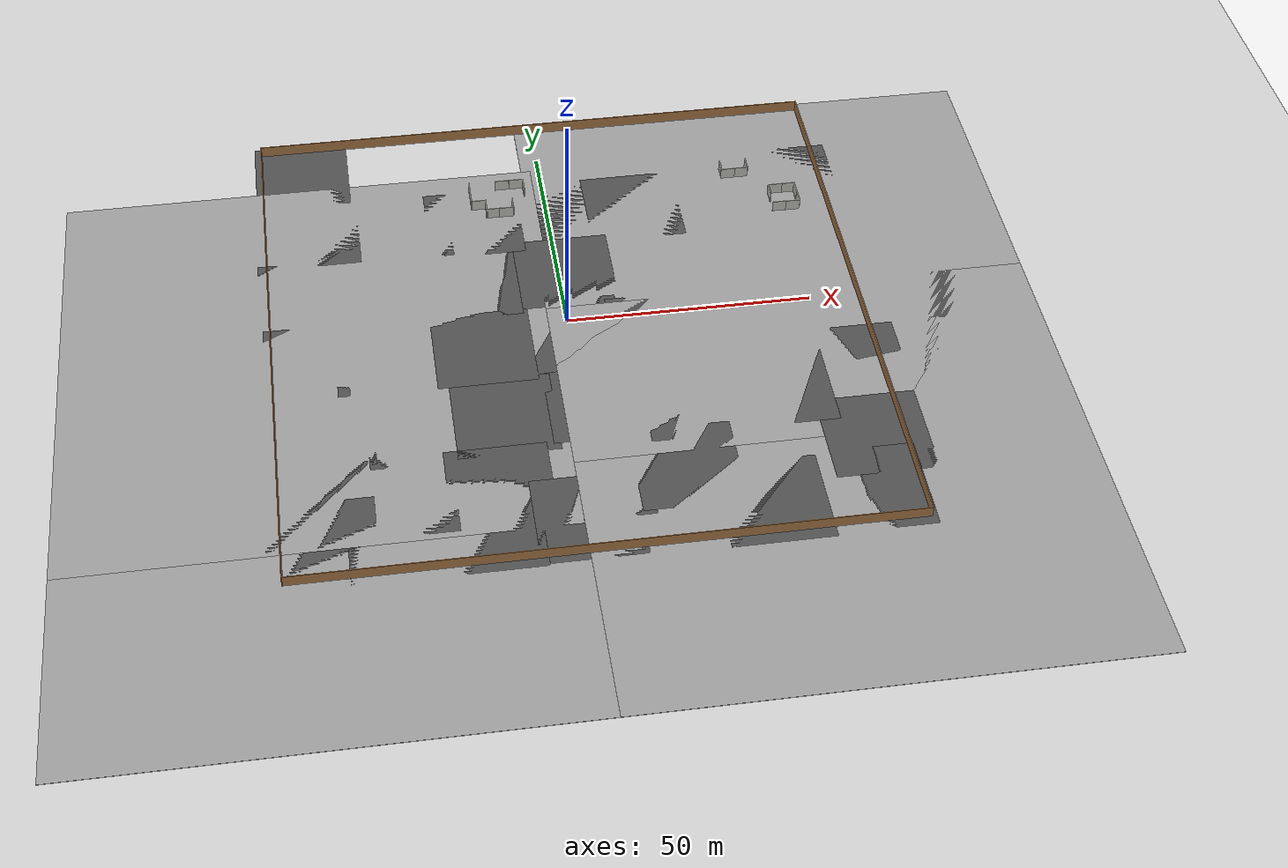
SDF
<sdf version="1.6">
 <world name="default">
  <model name="ground_plane">
   <static>1</static>
   <link name="link">
    <collision name="collision">
     <geometry><plane><normal>0 0 1</normal><size>100 100</size></plane></geometry>
     <surface><friction><ode><mu>100</mu><mu2>50</mu2></ode></friction></surface>
    </collision>
    <visual name="visual">
     <cast_shadows>0</cast_shadows>
     <geometry><plane><normal>0 0 1</normal><size>100 100</size></plane></geometry>
     <material>
      <script><uri>file://media/materials/scripts/gazebo.material</uri><name>Gazebo/Grey</name></script>
     </material>
    </visual>
   </link>
  </model>
  <model name="ground_plane_2">
   <static>1</static>
   <link name="link">
    <collision name="collision">
     <geometry><plane><normal>0 0 1</normal><size>100 100</size></plane></geometry>
     <surface><friction><ode><mu>100</mu><mu2>50</mu2></ode></friction></surface>
    </collision>
    <visual name="visual">
     <cast_shadows>0</cast_shadows>
     <geometry><plane><normal>0 0 1</normal><size>100 100</size></plane></geometry>
     <material>
      <script><uri>file://media/materials/scripts/gazebo.material</uri><name>Gazebo/Grey</name></script>
     </material>
    </visual>
   </link>
   <pose>46 12 0 0 -0 0</pose>
  </model>
  <model name="ground_plane_3">
   <static>1</static>
   <link name="link">
    <collision name="collision">
     <geometry><plane><normal>0 0 1</normal><size>100 100</size></plane></geometry>
     <surface><friction><ode><mu>100</mu><mu2>50</mu2></ode></friction></surface>
    </collision>
    <visual name="visual">
     <cast_shadows>0</cast_shadows>
     <geometry><plane><normal>0 0 1</normal><size>100 100</size></plane></geometry>
     <material>
      <script><uri>file://media/materials/scripts/gazebo.material</uri><name>Gazebo/Grey</name></script>
     </material>
    </visual>
   </link>
   <pose>46 -46 0 0 -0 0</pose>
  </model>
  <model name="ground_plane_5">
   <static>1</static>
   <link name="link">
    <collision name="collision">
     <geometry><plane><normal>0 0 1</normal><size>100 100</size></plane></geometry>
     <surface><friction><ode><mu>100</mu><mu2>50</mu2></ode></friction></surface>
    </collision>
    <visual name="visual">
     <cast_shadows>0</cast_shadows>
     <geometry><plane><normal>0 0 1</normal><size>100 100</size></plane></geometry>
     <material>
      <script><uri>file://media/materials/scripts/gazebo.material</uri><name>Gazebo/Grey</name></script>
     </material>
    </visual>
   </link>
   <pose>-52 -3 0 0 -0 0</pose>
  </model>
  <model name="ground_plane_6">
   <static>1</static>
   <link name="link">
    <collision name="collision">
     <geometry><plane><normal>0 0 1</normal><size>100 100</size></plane></geometry>
     <surface><friction><ode><mu>100</mu><mu2>50</mu2></ode></friction></surface>
    </collision>
    <visual name="visual">
     <cast_shadows>0</cast_shadows>
     <geometry><plane><normal>0 0 1</normal><size>100 100</size></plane></geometry>
     <material>
      <script><uri>file://media/materials/scripts/gazebo.material</uri><name>Gazebo/Grey</name></script>
     </material>
    </visual>
   </link>
   <pose>-52 -46 0 0 -0 0</pose>
  </model>
  <model name="map_final_frame_1">
   <link name="Wall_0">
    <collision name="Wall_0_Collision">
     <geometry><box><size>120.15 0.15 2.5</size></box></geometry>
     <pose>0 0 1.25 0 -0 0</pose>
    </collision>
    <visual name="Wall_0_Visual">
     <pose>0 0 1.25 0 -0 0</pose>
     <geometry><box><size>120.15 0.15 2.5</size></box></geometry>
     <material>
      <script><uri>file://media/materials/scripts/gazebo.material</uri><name>Gazebo/Wood</name></script>
      <ambient>1 1 1 1</ambient>
     </material>
    </visual>
    <pose>0 60 0 0 -0 0</pose>
   </link>
   <link name="Wall_1">
    <collision name="Wall_1_Collision">
     <geometry><box><size>120.15 0.15 2.5</size></box></geometry>
     <pose>0 0 1.25 0 -0 0</pose>
    </collision>
    <visual name="Wall_1_Visual">
     <pose>0 0 1.25 0 -0 0</pose>
     <geometry><box><size>120.15 0.15 2.5</size></box></geometry>
     <material>
      <script><uri>file://media/materials/scripts/gazebo.material</uri><name>Gazebo/Wood</name></script>
      <ambient>1 1 1 1</ambient>
     </material>
    </visual>
    <pose>60 0 0 0 0 -1.5708</pose>
   </link>
   <link name="Wall_2">
    <collision name="Wall_2_Collision">
     <geometry><box><size>120.15 0.15 2.5</size></box></geometry>
     <pose>0 0 1.25 0 -0 0</pose>
    </collision>
    <visual name="Wall_2_Visual">
     <pose>0 0 1.25 0 -0 0</pose>
     <geometry><box><size>120.15 0.15 2.5</size></box></geometry>
     <material>
      <script><uri>file://media/materials/scripts/gazebo.material</uri><name>Gazebo/Wood</name></script>
      <ambient>1 1 1 1</ambient>
     </material>
    </visual>
    <pose>0 -60 0 0 -0 3.14159</pose>
   </link>
   <link name="Wall_3">
    <collision name="Wall_3_Collision">
     <geometry><box><size>120.15 0.15 2.5</size></box></geometry>
     <pose>0 0 1.25 0 -0 0</pose>
    </collision>
    <visual name="Wall_3_Visual">
     <pose>0 0 1.25 0 -0 0</pose>
     <geometry><box><size>120.15 0.15 2.5</size></box></geometry>
     <material>
      <script><uri>file://media/materials/scripts/gazebo.material</uri><name>Gazebo/Wood</name></script>
      <ambient>1 1 1 1</ambient>
     </material>
    </visual>
    <pose>-60 0 0 0 -0 1.5708</pose>
   </link>
   <static>1</static>
  </model>
  <model name="concrete_wall">
   <pose>-15.8657 37.6157 0 0 -0 0</pose>
   <link name="Wall_0">
    <collision name="Wall_0_Collision">
     <geometry><box><size>3 0.15 2.5</size></box></geometry>
     <pose>0 0 1.25 0 -0 0</pose>
    </collision>
    <visual name="Wall_0_Visual">
     <pose>0 0 1.25 0 -0 0</pose>
     <geometry><box><size>3 0.15 2.5</size></box></geometry>
     <material>
      <script><uri>file://media/materials/scripts/gazebo.material</uri><name>Gazebo/CeilingTiled</name></script>
      <ambient>1 1 1 1</ambient>
     </material>
     <meta><layer>0</layer></meta>
    </visual>
    <pose>0 0 0 0 -0 1.5708</pose>
   </link>
   <static>1</static>
  </model>
  <model name="concrete_wall_clone">
   <pose>-15.8646 40.6072 0 0 -0 0</pose>
   <link name="Wall_0">
    <collision name="Wall_0_Collision">
     <geometry><box><size>3 0.15 2.5</size></box></geometry>
     <pose>0 0 1.25 0 -0 0</pose>
    </collision>
    <visual name="Wall_0_Visual">
     <pose>0 0 1.25 0 -0 0</pose>
     <geometry><box><size>3 0.15 2.5</size></box></geometry>
     <material>
      <script><uri>file://media/materials/scripts/gazebo.material</uri><name>Gazebo/CeilingTiled</name></script>
      <ambient>1 1 1 1</ambient>
     </material>
     <meta><layer>0</layer></meta>
    </visual>
    <pose>0 0 0 0 -0 1.5708</pose>
   </link>
   <static>1</static>
  </model>
  <model name="concrete_wall_clone_2">
   <pose>-7.15817 34.5512 0 0 -0 0</pose>
   <link name="Wall_0">
    <collision name="Wall_0_Collision">
     <geometry><box><size>3 0.15 2.5</size></box></geometry>
     <pose>0 0 1.25 0 -0 0</pose>
    </collision>
    <visual name="Wall_0_Visual">
     <pose>0 0 1.25 0 -0 0</pose>
     <geometry><box><size>3 0.15 2.5</size></box></geometry>
     <material>
      <script><uri>file://media/materials/scripts/gazebo.material</uri><name>Gazebo/CeilingTiled</name></script>
      <ambient>1 1 1 1</ambient>
     </material>
     <meta><layer>0</layer></meta>
    </visual>
    <pose>0 0 0 0 -0 1.5708</pose>
   </link>
   <static>1</static>
  </model>
  <model name="concrete_wall_clone_3">
   <pose>-12.8557 34.5996 0 0 -0 0</pose>
   <link name="Wall_0">
    <collision name="Wall_0_Collision">
     <geometry><box><size>3 0.15 2.5</size></box></geometry>
     <pose>0 0 1.25 0 -0 0</pose>
    </collision>
    <visual name="Wall_0_Visual">
     <pose>0 0 1.25 0 -0 0</pose>
     <geometry><box><size>3 0.15 2.5</size></box></geometry>
     <material>
      <script><uri>file://media/materials/scripts/gazebo.material</uri><name>Gazebo/CeilingTiled</name></script>
      <ambient>1 1 1 1</ambient>
     </material>
     <meta><layer>0</layer></meta>
    </visual>
    <pose>0 0 0 0 -0 1.5708</pose>
   </link>
   <static>1</static>
  </model>
  <model name="concrete_wall_clone_4">
   <pose>-4.17708 40.4274 0 0 -0 0</pose>
   <link name="Wall_0">
    <collision name="Wall_0_Collision">
     <geometry><box><size>3 0.15 2.5</size></box></geometry>
     <pose>0 0 1.25 0 -0 0</pose>
    </collision>
    <visual name="Wall_0_Visual">
     <pose>0 0 1.25 0 -0 0</pose>
     <geometry><box><size>3 0.15 2.5</size></box></geometry>
     <material>
      <script><uri>file://media/materials/scripts/gazebo.material</uri><name>Gazebo/CeilingTiled</name></script>
      <ambient>1 1 1 1</ambient>
     </material>
     <meta><layer>0</layer></meta>
    </visual>
    <pose>0 0 0 0 -0 1.5708</pose>
   </link>
   <static>1</static>
  </model>
  <model name="concrete_wall_clone_5">
   <pose>44.8534 40.6079 0 0 -0 0</pose>
   <link name="Wall_0">
    <collision name="Wall_0_Collision">
     <geometry><box><size>3 0.15 2.5</size></box></geometry>
     <pose>0 0 1.25 0 -0 0</pose>
    </collision>
    <visual name="Wall_0_Visual">
     <pose>0 0 1.25 0 -0 0</pose>
     <geometry><box><size>3 0.15 2.5</size></box></geometry>
     <material>
      <script><uri>file://media/materials/scripts/gazebo.material</uri><name>Gazebo/CeilingTiled</name></script>
      <ambient>1 1 1 1</ambient>
     </material>
     <meta><layer>0</layer></meta>
    </visual>
    <pose>0 0 0 0 -0 1.5708</pose>
   </link>
   <static>1</static>
  </model>
  <model name="concrete_wall_clone_8">
   <pose>39.1713 40.6026 0 0 -0 0</pose>
   <link name="Wall_0">
    <collision name="Wall_0_Collision">
     <geometry><box><size>3 0.15 2.5</size></box></geometry>
     <pose>0 0 1.25 0 -0 0</pose>
    </collision>
    <visual name="Wall_0_Visual">
     <pose>0 0 1.25 0 -0 0</pose>
     <geometry><box><size>3 0.15 2.5</size></box></geometry>
     <material>
      <script><uri>file://media/materials/scripts/gazebo.material</uri><name>Gazebo/CeilingTiled</name></script>
      <ambient>1 1 1 1</ambient>
     </material>
     <meta><layer>0</layer></meta>
    </visual>
    <pose>0 0 0 0 -0 1.5708</pose>
   </link>
   <static>1</static>
  </model>
  <model name="concrete_wall_clone_9">
   <pose>53.8487 28.5934 0 0 -0 0</pose>
   <link name="Wall_0">
    <collision name="Wall_0_Collision">
     <geometry><box><size>3 0.15 2.5</size></box></geometry>
     <pose>0 0 1.25 0 -0 0</pose>
    </collision>
    <visual name="Wall_0_Visual">
     <pose>0 0 1.25 0 -0 0</pose>
     <geometry><box><size>3 0.15 2.5</size></box></geometry>
     <material>
      <script><uri>file://media/materials/scripts/gazebo.material</uri><name>Gazebo/CeilingTiled</name></script>
      <ambient>1 1 1 1</ambient>
     </material>
     <meta><layer>0</layer></meta>
    </visual>
    <pose>0 0 0 0 -0 1.5708</pose>
   </link>
   <static>1</static>
  </model>
  <model name="concrete_wall_clone_10">
   <pose>53.8133 31.4997 0 0 -0 0</pose>
   <link name="Wall_0">
    <collision name="Wall_0_Collision">
     <geometry><box><size>3 0.15 2.5</size></box></geometry>
     <pose>0 0 1.25 0 -0 0</pose>
    </collision>
    <visual name="Wall_0_Visual">
     <pose>0 0 1.25 0 -0 0</pose>
     <geometry><box><size>3 0.15 2.5</size></box></geometry>
     <material>
      <script><uri>file://media/materials/scripts/gazebo.material</uri><name>Gazebo/CeilingTiled</name></script>
      <ambient>1 1 1 1</ambient>
     </material>
     <meta><layer>0</layer></meta>
    </visual>
    <pose>0 0 0 0 -0 1.5708</pose>
   </link>
   <static>1</static>
  </model>
  <model name="concrete_wall_clone_11">
   <pose>48.166 31.4626 0 0 -0 0</pose>
   <link name="Wall_0">
    <collision name="Wall_0_Collision">
     <geometry><box><size>3 0.15 2.5</size></box></geometry>
     <pose>0 0 1.25 0 -0 0</pose>
    </collision>
    <visual name="Wall_0_Visual">
     <pose>0 0 1.25 0 -0 0</pose>
     <geometry><box><size>3 0.15 2.5</size></box></geometry>
     <material>
      <script><uri>file://media/materials/scripts/gazebo.material</uri><name>Gazebo/CeilingTiled</name></script>
      <ambient>1 1 1 1</ambient>
     </material>
     <meta><layer>0</layer></meta>
    </visual>
    <pose>0 0 0 0 -0 1.5708</pose>
   </link>
   <static>1</static>
  </model>
  <model name="concrete_wall_0_clone">
   <pose>-8.6934 33.1258 0 0 -0 1.57079</pose>
   <link name="Wall_0">
    <collision name="Wall_0_Collision">
     <geometry><box><size>3 0.15 2.5</size></box></geometry>
     <pose>0 0 1.25 0 -0 0</pose>
    </collision>
    <visual name="Wall_0_Visual">
     <pose>0 0 1.25 0 -0 0</pose>
     <geometry><box><size>3 0.15 2.5</size></box></geometry>
     <material>
      <script><uri>file://media/materials/scripts/gazebo.material</uri><name>Gazebo/CeilingTiled</name></script>
      <ambient>1 1 1 1</ambient>
     </material>
     <meta><layer>0</layer></meta>
    </visual>
    <pose>0 0 0 0 -0 1.5708</pose>
   </link>
   <static>1</static>
  </model>
  <model name="concrete_wall_0_clone_0">
   <pose>-11.5429 33.1754 0 0 -0 1.57079</pose>
   <link name="Wall_0">
    <collision name="Wall_0_Collision">
     <geometry><box><size>3 0.15 2.5</size></box></geometry>
     <pose>0 0 1.25 0 -0 0</pose>
    </collision>
    <visual name="Wall_0_Visual">
     <pose>0 0 1.25 0 -0 0</pose>
     <geometry><box><size>3 0.15 2.5</size></box></geometry>
     <material>
      <script><uri>file://media/materials/scripts/gazebo.material</uri><name>Gazebo/CeilingTiled</name></script>
      <ambient>1 1 1 1</ambient>
     </material>
     <meta><layer>0</layer></meta>
    </visual>
    <pose>0 0 0 0 -0 1.5708</pose>
   </link>
   <static>1</static>
  </model>
  <model name="concrete_wall_0_clone_1">
   <pose>-14.3076 36.1296 0 0 -0 1.57079</pose>
   <link name="Wall_0">
    <collision name="Wall_0_Collision">
     <geometry><box><size>3 0.15 2.5</size></box></geometry>
     <pose>0 0 1.25 0 -0 0</pose>
    </collision>
    <visual name="Wall_0_Visual">
     <pose>0 0 1.25 0 -0 0</pose>
     <geometry><box><size>3 0.15 2.5</size></box></geometry>
     <material>
      <script><uri>file://media/materials/scripts/gazebo.material</uri><name>Gazebo/CeilingTiled</name></script>
      <ambient>1 1 1 1</ambient>
     </material>
     <meta><layer>0</layer></meta>
    </visual>
    <pose>0 0 0 0 -0 1.5708</pose>
   </link>
   <static>1</static>
  </model>
  <model name="concrete_wall_0_clone_2">
   <pose>-8.73802 41.867 0 0 -0 1.57079</pose>
   <link name="Wall_0">
    <collision name="Wall_0_Collision">
     <geometry><box><size>3 0.15 2.5</size></box></geometry>
     <pose>0 0 1.25 0 -0 0</pose>
    </collision>
    <visual name="Wall_0_Visual">
     <pose>0 0 1.25 0 -0 0</pose>
     <geometry><box><size>3 0.15 2.5</size></box></geometry>
     <material>
      <script><uri>file://media/materials/scripts/gazebo.material</uri><name>Gazebo/CeilingTiled</name></script>
      <ambient>1 1 1 1</ambient>
     </material>
     <meta><layer>0</layer></meta>
    </visual>
    <pose>0 0 0 0 -0 1.5708</pose>
   </link>
   <static>1</static>
  </model>
  <model name="concrete_wall_0_clone_3">
   <pose>-5.71807 41.8571 0 0 -0 1.57079</pose>
   <link name="Wall_0">
    <collision name="Wall_0_Collision">
     <geometry><box><size>3 0.15 2.5</size></box></geometry>
     <pose>0 0 1.25 0 -0 0</pose>
    </collision>
    <visual name="Wall_0_Visual">
     <pose>0 0 1.25 0 -0 0</pose>
     <geometry><box><size>3 0.15 2.5</size></box></geometry>
     <material>
      <script><uri>file://media/materials/scripts/gazebo.material</uri><name>Gazebo/CeilingTiled</name></script>
      <ambient>1 1 1 1</ambient>
     </material>
     <meta><layer>0</layer></meta>
    </visual>
    <pose>0 0 0 0 -0 1.5708</pose>
   </link>
   <static>1</static>
  </model>
  <model name="concrete_wall_0_clone_4">
   <pose>43.2873 39.1788 0 0 -0 1.57079</pose>
   <link name="Wall_0">
    <collision name="Wall_0_Collision">
     <geometry><box><size>3 0.15 2.5</size></box></geometry>
     <pose>0 0 1.25 0 -0 0</pose>
    </collision>
    <visual name="Wall_0_Visual">
     <pose>0 0 1.25 0 -0 0</pose>
     <geometry><box><size>3 0.15 2.5</size></box></geometry>
     <material>
      <script><uri>file://media/materials/scripts/gazebo.material</uri><name>Gazebo/CeilingTiled</name></script>
      <ambient>1 1 1 1</ambient>
     </material>
     <meta><layer>0</layer></meta>
    </visual>
    <pose>0 0 0 0 -0 1.5708</pose>
   </link>
   <static>1</static>
  </model>
  <model name="concrete_wall_0_clone_5">
   <pose>40.5241 39.1637 0 0 -0 1.57079</pose>
   <link name="Wall_0">
    <collision name="Wall_0_Collision">
     <geometry><box><size>3 0.15 2.5</size></box></geometry>
     <pose>0 0 1.25 0 -0 0</pose>
    </collision>
    <visual name="Wall_0_Visual">
     <pose>0 0 1.25 0 -0 0</pose>
     <geometry><box><size>3 0.15 2.5</size></box></geometry>
     <material>
      <script><uri>file://media/materials/scripts/gazebo.material</uri><name>Gazebo/CeilingTiled</name></script>
      <ambient>1 1 1 1</ambient>
     </material>
     <meta><layer>0</layer></meta>
    </visual>
    <pose>0 0 0 0 -0 1.5708</pose>
   </link>
   <static>1</static>
  </model>
  <model name="concrete_wall_0_clone_7">
   <pose>52.2455 32.8418 0 0 -0 1.57079</pose>
   <link name="Wall_0">
    <collision name="Wall_0_Collision">
     <geometry><box><size>3 0.15 2.5</size></box></geometry>
     <pose>0 0 1.25 0 -0 0</pose>
    </collision>
    <visual name="Wall_0_Visual">
     <pose>0 0 1.25 0 -0 0</pose>
     <geometry><box><size>3 0.15 2.5</size></box></geometry>
     <material>
      <script><uri>file://media/materials/scripts/gazebo.material</uri><name>Gazebo/CeilingTiled</name></script>
      <ambient>1 1 1 1</ambient>
     </material>
     <meta><layer>0</layer></meta>
    </visual>
    <pose>0 0 0 0 -0 1.5708</pose>
   </link>
   <static>1</static>
  </model>
  <model name="concrete_wall_0_clone_8">
   <pose>52.3587 27.128 0 0 -0 1.57079</pose>
   <link name="Wall_0">
    <collision name="Wall_0_Collision">
     <geometry><box><size>3 0.15 2.5</size></box></geometry>
     <pose>0 0 1.25 0 -0 0</pose>
    </collision>
    <visual name="Wall_0_Visual">
     <pose>0 0 1.25 0 -0 0</pose>
     <geometry><box><size>3 0.15 2.5</size></box></geometry>
     <material>
      <script><uri>file://media/materials/scripts/gazebo.material</uri><name>Gazebo/CeilingTiled</name></script>
      <ambient>1 1 1 1</ambient>
     </material>
     <meta><layer>0</layer></meta>
    </visual>
    <pose>0 0 0 0 -0 1.5708</pose>
   </link>
   <static>1</static>
  </model>
  <model name="concrete_wall_0_clone_9">
   <pose>49.5152 27.1828 0 0 -0 1.57079</pose>
   <link name="Wall_0">
    <collision name="Wall_0_Collision">
     <geometry><box><size>3 0.15 2.5</size></box></geometry>
     <pose>0 0 1.25 0 -0 0</pose>
    </collision>
    <visual name="Wall_0_Visual">
     <pose>0 0 1.25 0 -0 0</pose>
     <geometry><box><size>3 0.15 2.5</size></box></geometry>
     <material>
      <script><uri>file://media/materials/scripts/gazebo.material</uri><name>Gazebo/CeilingTiled</name></script>
      <ambient>1 1 1 1</ambient>
     </material>
     <meta><layer>0</layer></meta>
    </visual>
    <pose>0 0 0 0 -0 1.5708</pose>
   </link>
   <static>1</static>
  </model>
  <model name="concrete_wall_0_clone_10">
   <pose>49.6648 32.8391 0 0 -0 1.57079</pose>
   <link name="Wall_0">
    <collision name="Wall_0_Collision">
     <geometry><box><size>3 0.15 2.5</size></box></geometry>
     <pose>0 0 1.25 0 -0 0</pose>
    </collision>
    <visual name="Wall_0_Visual">
     <pose>0 0 1.25 0 -0 0</pose>
     <geometry><box><size>3 0.15 2.5</size></box></geometry>
     <material>
      <script><uri>file://media/materials/scripts/gazebo.material</uri><name>Gazebo/CeilingTiled</name></script>
      <ambient>1 1 1 1</ambient>
     </material>
     <meta><layer>0</layer></meta>
    </visual>
    <pose>0 0 0 0 -0 1.5708</pose>
   </link>
   <static>1</static>
  </model>
  <model name="asphalt_plane">
   <static>1</static>
   <link name="link">
    <collision name="collision"><geometry><box><size>20 20 0.1</size></box></geometry></collision>
    <visual name="visual">
     <cast_shadows>0</cast_shadows>
     <geometry><box><size>20 20 0.1</size></box></geometry>
     <material>
      <script>
       <uri>model://asphalt_plane/materials/scripts</uri>
       <uri>model://asphalt_plane/materials/textures</uri>
       <name>vrc/asphalt</name>
      </script>
     </material>
    </visual>
   </link>
   <pose>-51.523 52.0403 0 0 -0 0</pose>
  </model>
  <model name="asphalt_plane_clone_5">
   <static>1</static>
   <link name="link">
    <collision name="collision"><geometry><box><size>20 20 0.1</size></box></geometry></collision>
    <visual name="visual">
     <cast_shadows>0</cast_shadows>
     <geometry><box><size>20 20 0.1</size></box></geometry>
     <material>
      <script>
       <uri>model://asphalt_plane/materials/scripts</uri>
       <uri>model://asphalt_plane/materials/textures</uri>
       <name>vrc/asphalt</name>
      </script>
     </material>
    </visual>
   </link>
   <pose>53.4607 37.1373 0 0 -0 0</pose>
  </model>
  <model name="asphalt_plane_clone_6">
   <static>1</static>
   <link name="link">
    <collision name="collision"><geometry><box><size>20 20 0.1</size></box></geometry></collision>
    <visual name="visual">
     <cast_shadows>0</cast_shadows>
     <geometry><box><size>20 20 0.1</size></box></geometry>
     <material>
      <script>
       <uri>model://asphalt_plane/materials/scripts</uri>
       <uri>model://asphalt_plane/materials/textures</uri>
       <name>vrc/asphalt</name>
      </script>
     </material>
    </visual>
   </link>
   <pose>34.7301 34.1691 0 0 -0 0</pose>
  </model>
  <model name="asphalt_plane_clone_7">
   <static>1</static>
   <link name="link">
    <collision name="collision"><geometry><box><size>20 20 0.1</size></box></geometry></collision>
    <visual name="visual">
     <cast_shadows>0</cast_shadows>
     <geometry><box><size>20 20 0.1</size></box></geometry>
     <material>
      <script>
       <uri>model://asphalt_plane/materials/scripts</uri>
       <uri>model://asphalt_plane/materials/textures</uri>
       <name>vrc/asphalt</name>
      </script>
     </material>
    </visual>
   </link>
   <pose>18.4213 32.5991 0 0 -0 0</pose>
  </model>
  <model name="asphalt_plane_clone_8">
   <static>1</static>
   <link name="link">
    <collision name="collision"><geometry><box><size>20 20 0.1</size></box></geometry></collision>
    <visual name="visual">
     <cast_shadows>0</cast_shadows>
     <geometry><box><size>20 20 0.1</size></box></geometry>
     <material>
      <script>
       <uri>model://asphalt_plane/materials/scripts</uri>
       <uri>model://asphalt_plane/materials/textures</uri>
       <name>vrc/asphalt</name>
      </script>
     </material>
    </visual>
   </link>
   <pose>2.44075 32.1724 0 0 -0 0</pose>
  </model>
  <model name="asphalt_plane_clone_9">
   <static>1</static>
   <link name="link">
    <collision name="collision"><geometry><box><size>20 20 0.1</size></box></geometry></collision>
    <visual name="visual">
     <cast_shadows>0</cast_shadows>
     <geometry><box><size>20 20 0.1</size></box></geometry>
     <material>
      <script>
       <uri>model://asphalt_plane/materials/scripts</uri>
       <uri>model://asphalt_plane/materials/textures</uri>
       <name>vrc/asphalt</name>
      </script>
     </material>
    </visual>
   </link>
   <pose>-15.9348 31.8404 0 0 -0 0</pose>
  </model>
  <model name="asphalt_plane_clone_10">
   <static>1</static>
   <link name="link">
    <collision name="collision"><geometry><box><size>20 20 0.1</size></box></geometry></collision>
    <visual name="visual">
     <cast_shadows>0</cast_shadows>
     <geometry><box><size>20 20 0.1</size></box></geometry>
     <material>
      <script>
       <uri>model://asphalt_plane/materials/scripts</uri>
       <uri>model://asphalt_plane/materials/textures</uri>
       <name>vrc/asphalt</name>
      </script>
     </material>
    </visual>
   </link>
   <pose>-30.9753 32.6022 0 0 -0 0</pose>
  </model>
  <model name="asphalt_plane_clone_11">
   <static>1</static>
   <link name="link">
    <collision name="collision"><geometry><box><size>20 20 0.1</size></box></geometry></collision>
    <visual name="visual">
     <cast_shadows>0</cast_shadows>
     <geometry><box><size>20 20 0.1</size></box></geometry>
     <material>
      <script>
       <uri>model://asphalt_plane/materials/scripts</uri>
       <uri>model://asphalt_plane/materials/textures</uri>
       <name>vrc/asphalt</name>
      </script>
     </material>
    </visual>
   </link>
   <pose>-50.4268 33.0269 0 0 -0 0</pose>
  </model>
  <model name="asphalt_plane_clone_12">
   <static>1</static>
   <link name="link">
    <collision name="collision"><geometry><box><size>20 20 0.1</size></box></geometry></collision>
    <visual name="visual">
     <cast_shadows>0</cast_shadows>
     <geometry><box><size>20 20 0.1</size></box></geometry>
     <material>
      <script>
       <uri>model://asphalt_plane/materials/scripts</uri>
       <uri>model://asphalt_plane/materials/textures</uri>
       <name>vrc/asphalt</name>
      </script>
     </material>
    </visual>
   </link>
   <pose>-51.9592 14.2248 0 0 -0 0</pose>
  </model>
  <model name="asphalt_plane_clone_13">
   <static>1</static>
   <link name="link">
    <collision name="collision"><geometry><box><size>20 20 0.1</size></box></geometry></collision>
    <visual name="visual">
     <cast_shadows>0</cast_shadows>
     <geometry><box><size>20 20 0.1</size></box></geometry>
     <material>
      <script>
       <uri>model://asphalt_plane/materials/scripts</uri>
       <uri>model://asphalt_plane/materials/textures</uri>
       <name>vrc/asphalt</name>
      </script>
     </material>
    </visual>
   </link>
   <pose>-36.5853 13.4699 0 0 -0 0</pose>
  </model>
  <model name="asphalt_plane_clone_14">
   <static>1</static>
   <link name="link">
    <collision name="collision"><geometry><box><size>20 20 0.1</size></box></geometry></collision>
    <visual name="visual">
     <cast_shadows>0</cast_shadows>
     <geometry><box><size>20 20 0.1</size></box></geometry>
     <material>
      <script>
       <uri>model://asphalt_plane/materials/scripts</uri>
       <uri>model://asphalt_plane/materials/textures</uri>
       <name>vrc/asphalt</name>
      </script>
     </material>
    </visual>
   </link>
   <pose>-18.6315 13.3215 0 0 -0 0</pose>
  </model>
  <model name="asphalt_plane_clone_15">
   <static>1</static>
   <link name="link">
    <collision name="collision"><geometry><box><size>20 20 0.1</size></box></geometry></collision>
    <visual name="visual">
     <cast_shadows>0</cast_shadows>
     <geometry><box><size>20 20 0.1</size></box></geometry>
     <material>
      <script>
       <uri>model://asphalt_plane/materials/scripts</uri>
       <uri>model://asphalt_plane/materials/textures</uri>
       <name>vrc/asphalt</name>
      </script>
     </material>
    </visual>
   </link>
   <pose>1.33215 14.4529 0 0 -0 0</pose>
  </model>
  <model name="asphalt_plane_clone_16">
   <static>1</static>
   <link name="link">
    <collision name="collision"><geometry><box><size>20 20 0.1</size></box></geometry></collision>
    <visual name="visual">
     <cast_shadows>0</cast_shadows>
     <geometry><box><size>20 20 0.1</size></box></geometry>
     <material>
      <script>
       <uri>model://asphalt_plane/materials/scripts</uri>
       <uri>model://asphalt_plane/materials/textures</uri>
       <name>vrc/asphalt</name>
      </script>
     </material>
    </visual>
   </link>
   <pose>21.3116 14.2282 0 0 -0 0</pose>
  </model>
  <model name="asphalt_plane_clone_17">
   <static>1</static>
   <link name="link">
    <collision name="collision"><geometry><box><size>20 20 0.1</size></box></geometry></collision>
    <visual name="visual">
     <cast_shadows>0</cast_shadows>
     <geometry><box><size>20 20 0.1</size></box></geometry>
     <material>
      <script>
       <uri>model://asphalt_plane/materials/scripts</uri>
       <uri>model://asphalt_plane/materials/textures</uri>
       <name>vrc/asphalt</name>
      </script>
     </material>
    </visual>
   </link>
   <pose>39.6177 14.7337 0 0 -0 0</pose>
  </model>
  <model name="asphalt_plane_clone_18">
   <static>1</static>
   <link name="link">
    <collision name="collision"><geometry><box><size>20 20 0.1</size></box></geometry></collision>
    <visual name="visual">
     <cast_shadows>0</cast_shadows>
     <geometry><box><size>20 20 0.1</size></box></geometry>
     <material>
      <script>
       <uri>model://asphalt_plane/materials/scripts</uri>
       <uri>model://asphalt_plane/materials/textures</uri>
       <name>vrc/asphalt</name>
      </script>
     </material>
    </visual>
   </link>
   <pose>53.4439 18.4319 0 0 -0 0</pose>
  </model>
  <model name="asphalt_plane_clone_19">
   <static>1</static>
   <link name="link">
    <collision name="collision"><geometry><box><size>20 20 0.1</size></box></geometry></collision>
    <visual name="visual">
     <cast_shadows>0</cast_shadows>
     <geometry><box><size>20 20 0.1</size></box></geometry>
     <material>
      <script>
       <uri>model://asphalt_plane/materials/scripts</uri>
       <uri>model://asphalt_plane/materials/textures</uri>
       <name>vrc/asphalt</name>
      </script>
     </material>
    </visual>
   </link>
   <pose>53.1625 -0.183121 0 0 -0 0</pose>
  </model>
  <model name="asphalt_plane_clone_20">
   <static>1</static>
   <link name="link">
    <collision name="collision"><geometry><box><size>20 20 0.1</size></box></geometry></collision>
    <visual name="visual">
     <cast_shadows>0</cast_shadows>
     <geometry><box><size>20 20 0.1</size></box></geometry>
     <material>
      <script>
       <uri>model://asphalt_plane/materials/scripts</uri>
       <uri>model://asphalt_plane/materials/textures</uri>
       <name>vrc/asphalt</name>
      </script>
     </material>
    </visual>
   </link>
   <pose>35.0673 -4.88067 0 0 -0 0</pose>
  </model>
  <model name="asphalt_plane_clone_21">
   <static>1</static>
   <link name="link">
    <collision name="collision"><geometry><box><size>20 20 0.1</size></box></geometry></collision>
    <visual name="visual">
     <cast_shadows>0</cast_shadows>
     <geometry><box><size>20 20 0.1</size></box></geometry>
     <material>
      <script>
       <uri>model://asphalt_plane/materials/scripts</uri>
       <uri>model://asphalt_plane/materials/textures</uri>
       <name>vrc/asphalt</name>
      </script>
     </material>
    </visual>
   </link>
   <pose>18.2629 -4.96345 0 0 -0 0</pose>
  </model>
  <model name="asphalt_plane_clone_22">
   <static>1</static>
   <link name="link">
    <collision name="collision"><geometry><box><size>20 20 0.1</size></box></geometry></collision>
    <visual name="visual">
     <cast_shadows>0</cast_shadows>
     <geometry><box><size>20 20 0.1</size></box></geometry>
     <material>
      <script>
       <uri>model://asphalt_plane/materials/scripts</uri>
       <uri>model://asphalt_plane/materials/textures</uri>
       <name>vrc/asphalt</name>
      </script>
     </material>
    </visual>
   </link>
   <pose>0.447436 -3.90623 0 0 -0 0</pose>
  </model>
  <model name="asphalt_plane_clone_23">
   <static>1</static>
   <link name="link">
    <collision name="collision"><geometry><box><size>20 20 0.1</size></box></geometry></collision>
    <visual name="visual">
     <cast_shadows>0</cast_shadows>
     <geometry><box><size>20 20 0.1</size></box></geometry>
     <material>
      <script>
       <uri>model://asphalt_plane/materials/scripts</uri>
       <uri>model://asphalt_plane/materials/textures</uri>
       <name>vrc/asphalt</name>
      </script>
     </material>
    </visual>
   </link>
   <pose>-17.8204 -5.46546 0 0 -0 0</pose>
  </model>
  <model name="asphalt_plane_clone_24">
   <static>1</static>
   <link name="link">
    <collision name="collision"><geometry><box><size>20 20 0.1</size></box></geometry></collision>
    <visual name="visual">
     <cast_shadows>0</cast_shadows>
     <geometry><box><size>20 20 0.1</size></box></geometry>
     <material>
      <script>
       <uri>model://asphalt_plane/materials/scripts</uri>
       <uri>model://asphalt_plane/materials/textures</uri>
       <name>vrc/asphalt</name>
      </script>
     </material>
    </visual>
   </link>
   <pose>-37.4136 -5.04931 0 0 -0 0</pose>
  </model>
  <model name="asphalt_plane_clone_25">
   <static>1</static>
   <link name="link">
    <collision name="collision"><geometry><box><size>20 20 0.1</size></box></geometry></collision>
    <visual name="visual">
     <cast_shadows>0</cast_shadows>
     <geometry><box><size>20 20 0.1</size></box></geometry>
     <material>
      <script>
       <uri>model://asphalt_plane/materials/scripts</uri>
       <uri>model://asphalt_plane/materials/textures</uri>
       <name>vrc/asphalt</name>
      </script>
     </material>
    </visual>
   </link>
   <pose>-51.5333 -4.94786 0 0 -0 0</pose>
  </model>
  <model name="asphalt_plane_clone_26">
   <static>1</static>
   <link name="link">
    <collision name="collision"><geometry><box><size>20 20 0.1</size></box></geometry></collision>
    <visual name="visual">
     <cast_shadows>0</cast_shadows>
     <geometry><box><size>20 20 0.1</size></box></geometry>
     <material>
      <script>
       <uri>model://asphalt_plane/materials/scripts</uri>
       <uri>model://asphalt_plane/materials/textures</uri>
       <name>vrc/asphalt</name>
      </script>
     </material>
    </visual>
   </link>
   <pose>-51.0501 -23.3582 0 0 -0 0</pose>
  </model>
  <model name="asphalt_plane_clone_27">
   <static>1</static>
   <link name="link">
    <collision name="collision"><geometry><box><size>20 20 0.1</size></box></geometry></collision>
    <visual name="visual">
     <cast_shadows>0</cast_shadows>
     <geometry><box><size>20 20 0.1</size></box></geometry>
     <material>
      <script>
       <uri>model://asphalt_plane/materials/scripts</uri>
       <uri>model://asphalt_plane/materials/textures</uri>
       <name>vrc/asphalt</name>
      </script>
     </material>
    </visual>
   </link>
   <pose>-32.4705 -24.7052 0 0 -0 0</pose>
  </model>
  <model name="asphalt_plane_clone_28">
   <static>1</static>
   <link name="link">
    <collision name="collision"><geometry><box><size>20 20 0.1</size></box></geometry></collision>
    <visual name="visual">
     <cast_shadows>0</cast_shadows>
     <geometry><box><size>20 20 0.1</size></box></geometry>
     <material>
      <script>
       <uri>model://asphalt_plane/materials/scripts</uri>
       <uri>model://asphalt_plane/materials/textures</uri>
       <name>vrc/asphalt</name>
      </script>
     </material>
    </visual>
   </link>
   <pose>-15.71 -24.2148 0 0 -0 0</pose>
  </model>
  <model name="asphalt_plane_clone_29">
   <static>1</static>
   <link name="link">
    <collision name="collision"><geometry><box><size>20 20 0.1</size></box></geometry></collision>
    <visual name="visual">
     <cast_shadows>0</cast_shadows>
     <geometry><box><size>20 20 0.1</size></box></geometry>
     <material>
      <script>
       <uri>model://asphalt_plane/materials/scripts</uri>
       <uri>model://asphalt_plane/materials/textures</uri>
       <name>vrc/asphalt</name>
      </script>
     </material>
    </visual>
   </link>
   <pose>2.89706 -22.7137 0 0 -0 0</pose>
  </model>
  <model name="asphalt_plane_clone_30">
   <static>1</static>
   <link name="link">
    <collision name="collision"><geometry><box><size>20 20 0.1</size></box></geometry></collision>
    <visual name="visual">
     <cast_shadows>0</cast_shadows>
     <geometry><box><size>20 20 0.1</size></box></geometry>
     <material>
      <script>
       <uri>model://asphalt_plane/materials/scripts</uri>
       <uri>model://asphalt_plane/materials/textures</uri>
       <name>vrc/asphalt</name>
      </script>
     </material>
    </visual>
   </link>
   <pose>21.6263 -24.7872 0 0 -0 0</pose>
  </model>
  <model name="asphalt_plane_clone_31">
   <static>1</static>
   <link name="link">
    <collision name="collision"><geometry><box><size>20 20 0.1</size></box></geometry></collision>
    <visual name="visual">
     <cast_shadows>0</cast_shadows>
     <geometry><box><size>20 20 0.1</size></box></geometry>
     <material>
      <script>
       <uri>model://asphalt_plane/materials/scripts</uri>
       <uri>model://asphalt_plane/materials/textures</uri>
       <name>vrc/asphalt</name>
      </script>
     </material>
    </visual>
   </link>
   <pose>38.9053 -23.7645 0 0 -0 0</pose>
  </model>
  <model name="asphalt_plane_clone_32">
   <static>1</static>
   <link name="link">
    <collision name="collision"><geometry><box><size>20 20 0.1</size></box></geometry></collision>
    <visual name="visual">
     <cast_shadows>0</cast_shadows>
     <geometry><box><size>20 20 0.1</size></box></geometry>
     <material>
      <script>
       <uri>model://asphalt_plane/materials/scripts</uri>
       <uri>model://asphalt_plane/materials/textures</uri>
       <name>vrc/asphalt</name>
      </script>
     </material>
    </visual>
   </link>
   <pose>54.9808 -19.2826 0 0 -0 0</pose>
  </model>
  <model name="asphalt_plane_clone_34">
   <static>1</static>
   <link name="link">
    <collision name="collision"><geometry><box><size>20 20 0.1</size></box></geometry></collision>
    <visual name="visual">
     <cast_shadows>0</cast_shadows>
     <geometry><box><size>20 20 0.1</size></box></geometry>
     <material>
      <script>
       <uri>model://asphalt_plane/materials/scripts</uri>
       <uri>model://asphalt_plane/materials/textures</uri>
       <name>vrc/asphalt</name>
      </script>
     </material>
    </visual>
   </link>
   <pose>35.8635 -41.4757 0 0 -0 0</pose>
  </model>
  <model name="asphalt_plane_clone_33">
   <static>1</static>
   <link name="link">
    <collision name="collision"><geometry><box><size>20 20 0.1</size></box></geometry></collision>
    <visual name="visual">
     <cast_shadows>0</cast_shadows>
     <geometry><box><size>20 20 0.1</size></box></geometry>
     <material>
      <script>
       <uri>model://asphalt_plane/materials/scripts</uri>
       <uri>model://asphalt_plane/materials/textures</uri>
       <name>vrc/asphalt</name>
      </script>
     </material>
    </visual>
   </link>
   <pose>54.7131 -38.4782 0 0 -0 0</pose>
  </model>
  <model name="asphalt_plane_clone_35">
   <static>1</static>
   <link name="link">
    <collision name="collision"><geometry><box><size>20 20 0.1</size></box></geometry></collision>
    <visual name="visual">
     <cast_shadows>0</cast_shadows>
     <geometry><box><size>20 20 0.1</size></box></geometry>
     <material>
      <script>
       <uri>model://asphalt_plane/materials/scripts</uri>
       <uri>model://asphalt_plane/materials/textures</uri>
       <name>vrc/asphalt</name>
      </script>
     </material>
    </visual>
   </link>
   <pose>51.1203 -51.8212 0 0 -0 0</pose>
  </model>
  <model name="asphalt_plane_clone_36">
   <static>1</static>
   <link name="link">
    <collision name="collision"><geometry><box><size>20 20 0.1</size></box></geometry></collision>
    <visual name="visual">
     <cast_shadows>0</cast_shadows>
     <geometry><box><size>20 20 0.1</size></box></geometry>
     <material>
      <script>
       <uri>model://asphalt_plane/materials/scripts</uri>
       <uri>model://asphalt_plane/materials/textures</uri>
       <name>vrc/asphalt</name>
      </script>
     </material>
    </visual>
   </link>
   <pose>31.7988 -52.3268 0 0 -0 0</pose>
  </model>
  <model name="asphalt_plane_clone_37">
   <static>1</static>
   <link name="link">
    <collision name="collision"><geometry><box><size>20 20 0.1</size></box></geometry></collision>
    <visual name="visual">
     <cast_shadows>0</cast_shadows>
     <geometry><box><size>20 20 0.1</size></box></geometry>
     <material>
      <script>
       <uri>model://asphalt_plane/materials/scripts</uri>
       <uri>model://asphalt_plane/materials/textures</uri>
       <name>vrc/asphalt</name>
      </script>
     </material>
    </visual>
   </link>
   <pose>15.4279 -52.061 0 0 -0 0</pose>
  </model>
  <model name="asphalt_plane_clone_38">
   <static>1</static>
   <link name="link">
    <collision name="collision"><geometry><box><size>20 20 0.1</size></box></geometry></collision>
    <visual name="visual">
     <cast_shadows>0</cast_shadows>
     <geometry><box><size>20 20 0.1</size></box></geometry>
     <material>
      <script>
       <uri>model://asphalt_plane/materials/scripts</uri>
       <uri>model://asphalt_plane/materials/textures</uri>
       <name>vrc/asphalt</name>
      </script>
     </material>
    </visual>
   </link>
   <pose>17.1857 -41.5953 0 0 -0 0</pose>
  </model>
  <model name="asphalt_plane_clone_39">
   <static>1</static>
   <link name="link">
    <collision name="collision"><geometry><box><size>20 20 0.1</size></box></geometry></collision>
    <visual name="visual">
     <cast_shadows>0</cast_shadows>
     <geometry><box><size>20 20 0.1</size></box></geometry>
     <material>
      <script>
       <uri>model://asphalt_plane/materials/scripts</uri>
       <uri>model://asphalt_plane/materials/textures</uri>
       <name>vrc/asphalt</name>
      </script>
     </material>
    </visual>
   </link>
   <pose>-0.228885 -42.4977 0 0 -0 0</pose>
  </model>
  <model name="asphalt_plane_clone_40">
   <static>1</static>
   <link name="link">
    <collision name="collision"><geometry><box><size>20 20 0.1</size></box></geometry></collision>
    <visual name="visual">
     <cast_shadows>0</cast_shadows>
     <geometry><box><size>20 20 0.1</size></box></geometry>
     <material>
      <script>
       <uri>model://asphalt_plane/materials/scripts</uri>
       <uri>model://asphalt_plane/materials/textures</uri>
       <name>vrc/asphalt</name>
      </script>
     </material>
    </visual>
   </link>
   <pose>-3.17442 -51.5629 0 0 -0 0</pose>
  </model>
  <model name="asphalt_plane_clone_41">
   <static>1</static>
   <link name="link">
    <collision name="collision"><geometry><box><size>20 20 0.1</size></box></geometry></collision>
    <visual name="visual">
     <cast_shadows>0</cast_shadows>
     <geometry><box><size>20 20 0.1</size></box></geometry>
     <material>
      <script>
       <uri>model://asphalt_plane/materials/scripts</uri>
       <uri>model://asphalt_plane/materials/textures</uri>
       <name>vrc/asphalt</name>
      </script>
     </material>
    </visual>
   </link>
   <pose>-21.6018 -51.952 0 0 -0 0</pose>
  </model>
  <model name="asphalt_plane_clone_42">
   <static>1</static>
   <link name="link">
    <collision name="collision"><geometry><box><size>20 20 0.1</size></box></geometry></collision>
    <visual name="visual">
     <cast_shadows>0</cast_shadows>
     <geometry><box><size>20 20 0.1</size></box></geometry>
     <material>
      <script>
       <uri>model://asphalt_plane/materials/scripts</uri>
       <uri>model://asphalt_plane/materials/textures</uri>
       <name>vrc/asphalt</name>
      </script>
     </material>
    </visual>
   </link>
   <pose>-18.4916 -42.1746 0 0 -0 0</pose>
  </model>
  <model name="asphalt_plane_clone_43">
   <static>1</static>
   <link name="link">
    <collision name="collision"><geometry><box><size>20 20 0.1</size></box></geometry></collision>
    <visual name="visual">
     <cast_shadows>0</cast_shadows>
     <geometry><box><size>20 20 0.1</size></box></geometry>
     <material>
      <script>
       <uri>model://asphalt_plane/materials/scripts</uri>
       <uri>model://asphalt_plane/materials/textures</uri>
       <name>vrc/asphalt</name>
      </script>
     </material>
    </visual>
   </link>
   <pose>-36.9043 -41.6923 0 0 -0 0</pose>
  </model>
  <model name="asphalt_plane_clone_44">
   <static>1</static>
   <link name="link">
    <collision name="collision"><geometry><box><size>20 20 0.1</size></box></geometry></collision>
    <visual name="visual">
     <cast_shadows>0</cast_shadows>
     <geometry><box><size>20 20 0.1</size></box></geometry>
     <material>
      <script>
       <uri>model://asphalt_plane/materials/scripts</uri>
       <uri>model://asphalt_plane/materials/textures</uri>
       <name>vrc/asphalt</name>
      </script>
     </material>
    </visual>
   </link>
   <pose>-52.7899 -42.3415 0 0 -0 0</pose>
  </model>
  <model name="asphalt_plane_clone_45">
   <static>1</static>
   <link name="link">
    <collision name="collision"><geometry><box><size>20 20 0.1</size></box></geometry></collision>
    <visual name="visual">
     <cast_shadows>0</cast_shadows>
     <geometry><box><size>20 20 0.1</size></box></geometry>
     <material>
      <script>
       <uri>model://asphalt_plane/materials/scripts</uri>
       <uri>model://asphalt_plane/materials/textures</uri>
       <name>vrc/asphalt</name>
      </script>
     </material>
    </visual>
   </link>
   <pose>-52.256 -51.3376 0 0 -0 0</pose>
  </model>
  <model name="asphalt_plane_clone_46">
   <static>1</static>
   <link name="link">
    <collision name="collision"><geometry><box><size>20 20 0.1</size></box></geometry></collision>
    <visual name="visual">
     <cast_shadows>0</cast_shadows>
     <geometry><box><size>20 20 0.1</size></box></geometry>
     <material>
      <script>
       <uri>model://asphalt_plane/materials/scripts</uri>
       <uri>model://asphalt_plane/materials/textures</uri>
       <name>vrc/asphalt</name>
      </script>
     </material>
    </visual>
   </link>
   <pose>-37.737 -52.1242 0 0 -0 0</pose>
  </model>
 </world>
</sdf>
